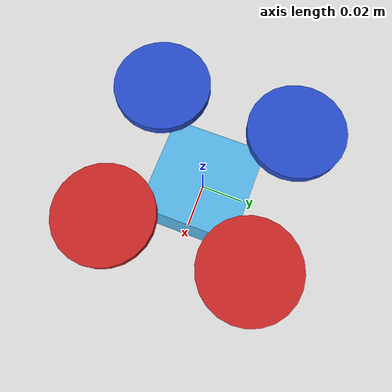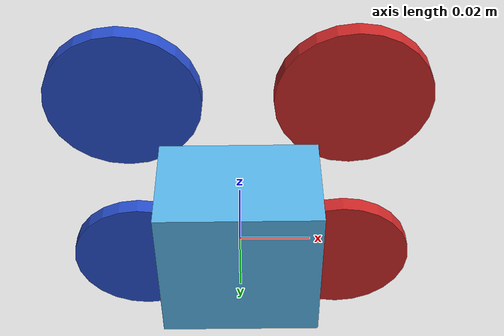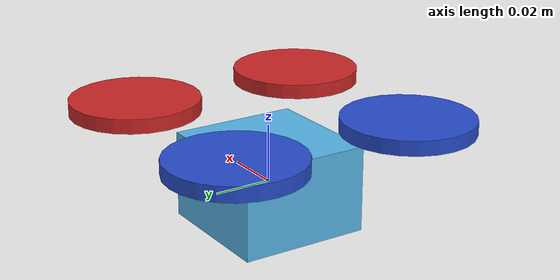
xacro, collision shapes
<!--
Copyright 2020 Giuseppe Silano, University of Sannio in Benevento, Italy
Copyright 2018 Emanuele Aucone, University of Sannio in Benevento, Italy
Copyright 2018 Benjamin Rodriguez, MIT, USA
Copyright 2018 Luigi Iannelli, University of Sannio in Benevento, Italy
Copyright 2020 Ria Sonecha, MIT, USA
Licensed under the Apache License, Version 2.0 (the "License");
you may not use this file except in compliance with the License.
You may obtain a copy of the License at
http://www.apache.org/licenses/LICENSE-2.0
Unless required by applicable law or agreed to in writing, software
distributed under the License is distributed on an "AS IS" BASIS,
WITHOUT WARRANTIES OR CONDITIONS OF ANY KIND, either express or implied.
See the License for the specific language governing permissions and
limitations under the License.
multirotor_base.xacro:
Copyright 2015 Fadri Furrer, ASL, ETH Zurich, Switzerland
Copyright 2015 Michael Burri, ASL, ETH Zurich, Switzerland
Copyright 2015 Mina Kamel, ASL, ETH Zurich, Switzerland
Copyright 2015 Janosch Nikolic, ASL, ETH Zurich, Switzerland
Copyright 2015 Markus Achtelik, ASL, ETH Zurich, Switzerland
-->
<?xml version="1.0"?>

<robot name="crazyflie2" xmlns:xacro="http://ros.org/wiki/xacro">
  <!-- Properties (Taken from Novel Dynamic Inversion Architecture Design for Quadrocopter Control by Jian Wang et al.) -->
  <xacro:property name="namespace" value="crazyflie2" />
  <xacro:property name="rotor_velocity_slowdown_sim" value="50" />
  <xacro:property name="use_mesh_file" value="true" />
  <xacro:property name="mesh_file" value="/home/kiko-hp-omen/RoboticPark/src/uned_crazyflie_ros_pkg/uned_crazyflie_config/model/test/crazyflie2.dae" />
  <xacro:property name="mass" value="0.025" /> <!-- [kg] -->
  <xacro:property name="body_width" value="0.045" />
  <xacro:property name="body_height" value="0.03" />
  <xacro:property name="mass_rotor" value="0.0005" /> <!-- [kg] -->
  <xacro:property name="arm_length" value="0.046" />
  <xacro:property name="rotor_offset_top" value="0.024" />
  <xacro:property name="radius_rotor" value="0.0225" />
  <xacro:property name="sin45" value="0.707106781186" />
  <xacro:property name="cos45" value="0.707106781186" />
  <!-- Forster's -->
  <xacro:property name="motor_constant" value="1.28192e-08" /> <!-- [kg m/s^2] -->
  <xacro:property name="moment_constant" value="5.964552e-03" />
  <xacro:property name="time_constant_up" value="0.0125" />
  <xacro:property name="time_constant_down" value="0.025" />
  <xacro:property name="max_rot_velocity" value="2618" /> <!-- [rad/s] -->
  <xacro:property name="rotor_drag_coefficient" value="8.06428e-05" />
  <xacro:property name="rolling_moment_coefficient" value="0.000001" />

  <!-- Property Blocks -->
  <xacro:property name="body_inertia">
    <inertia ixx="1.657171e-05" ixy="0.0" ixz="0.0" iyy="1.657171e-05" iyz="0.0" izz="2.9261652e-05" />
  </xacro:property>

  <!-- inertia of a single rotor, assuming it is a cuboid. Height=0.4mm, width=0.8mm -->
  <xacro:property name="rotor_inertia">
    <xacro:box_inertia x="${radius_rotor}" y="0.007" z="0.003" mass="${mass_rotor*rotor_velocity_slowdown_sim}" />
  </xacro:property>

  <!-- Included URDF Files -->
  <xacro:include filename="/home/kiko-hp-omen/RoboticPark/src/uned_crazyflie_ros_pkg/uned_crazyflie_config/model/test/multirotor_base.xacro" />

  <!-- Instantiate multirotor_base_macro once -->
  <xacro:multirotor_base_macro
    robot_namespace="${namespace}"
    mass="${mass}"
    body_width="${body_width}"
    body_height="${body_height}"
    use_mesh_file="${use_mesh_file}"
    mesh_file="${mesh_file}">
    <xacro:insert_block name="body_inertia" />
  </xacro:multirotor_base_macro>

  <!-- Instantiate rotors -->
  <xacro:vertical_rotor
    robot_namespace="${namespace}"
    suffix="front-right"
    direction="ccw"
    motor_constant="${motor_constant}"
    moment_constant="${moment_constant}"
    parent="${namespace}/base_link"
    mass_rotor="${mass_rotor}"
    radius_rotor="${radius_rotor}"
    time_constant_up="${time_constant_up}"
    time_constant_down="${time_constant_down}"
    max_rot_velocity="${max_rot_velocity}"
    motor_number="0"
    rotor_drag_coefficient="${rotor_drag_coefficient}"
    rolling_moment_coefficient="${rolling_moment_coefficient}"
    color="Red"
    use_own_mesh="false"
    mesh="">
    <origin xyz="${cos45*arm_length} -${sin45*arm_length} ${rotor_offset_top}" rpy="0 0 0" />
    <xacro:insert_block name="rotor_inertia" />
  </xacro:vertical_rotor>

  <xacro:vertical_rotor
    robot_namespace="${namespace}"
    suffix="back-right"
    direction="cw"
    motor_constant="${motor_constant}"
    moment_constant="${moment_constant}"
    parent="${namespace}/base_link"
    mass_rotor="${mass_rotor}"
    radius_rotor="${radius_rotor}"
    time_constant_up="${time_constant_up}"
    time_constant_down="${time_constant_down}"
    max_rot_velocity="${max_rot_velocity}"
    motor_number="1"
    rotor_drag_coefficient="${rotor_drag_coefficient}"
    rolling_moment_coefficient="${rolling_moment_coefficient}"
    color="Blue"
    use_own_mesh="false"
    mesh="">
    <origin xyz="-${cos45*arm_length} -${sin45*arm_length} ${rotor_offset_top}" rpy="0 0 0" />
    <xacro:insert_block name="rotor_inertia" />
  </xacro:vertical_rotor>

  <xacro:vertical_rotor
    robot_namespace="${namespace}"
    suffix="back-left"
    direction="ccw"
    motor_constant="${motor_constant}"
    moment_constant="${moment_constant}"
    parent="${namespace}/base_link"
    mass_rotor="${mass_rotor}"
    radius_rotor="${radius_rotor}"
    time_constant_up="${time_constant_up}"
    time_constant_down="${time_constant_down}"
    max_rot_velocity="${max_rot_velocity}"
    motor_number="2"
    rotor_drag_coefficient="${rotor_drag_coefficient}"
    rolling_moment_coefficient="${rolling_moment_coefficient}"
    color="Blue"
    use_own_mesh="false"
    mesh="">
    <origin xyz="-${cos45*arm_length} ${sin45*arm_length} ${rotor_offset_top}" rpy="0 0 0" />
    <xacro:insert_block name="rotor_inertia" />
  </xacro:vertical_rotor>

  <xacro:vertical_rotor
    robot_namespace="${namespace}"
    suffix="front-left"
    direction="cw"
    motor_constant="${motor_constant}"
    moment_constant="${moment_constant}"
    parent="${namespace}/base_link"
    mass_rotor="${mass_rotor}"
    radius_rotor="${radius_rotor}"
    time_constant_up="${time_constant_up}"
    time_constant_down="${time_constant_down}"
    max_rot_velocity="${max_rot_velocity}"
    motor_number="3"
    rotor_drag_coefficient="${rotor_drag_coefficient}"
    rolling_moment_coefficient="${rolling_moment_coefficient}"
    color="Red"
    use_own_mesh="false"
    mesh="">
    <origin xyz="${cos45*arm_length} ${sin45*arm_length} ${rotor_offset_top}" rpy="0 0 0" />
    <xacro:insert_block name="rotor_inertia" />
  </xacro:vertical_rotor>

</robot>

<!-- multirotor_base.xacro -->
<robot xmlns:xacro="http://ros.org/wiki/xacro">
  <!-- Macro for the inertia of a box -->
  <xacro:macro name="box_inertia" params="x y z mass">
    <inertia ixx="${0.0833333 * mass * (y*y + z*z)}" ixy="0.0" ixz="0.0"
      iyy="${0.0833333 * mass * (x*x + z*z)}" iyz="0.0"
      izz="${0.0833333 * mass * (x*x + y*y)}" />
  </xacro:macro>

  <!-- Macro for the inertial properties of a box -->
  <xacro:macro name="box_inertial" params="x y z mass *origin">
    <inertial>
      <mass value="${mass}" />
      <xacro:insert_block name="origin" />
      <xacro:box_inertia x="${x}" y="${y}" z="${z}" mass="${mass}" />
    </inertial>
  </xacro:macro>

  <!-- Main multirotor link -->
  <xacro:macro name="multirotor_base_macro"
    params="robot_namespace mass body_width body_height use_mesh_file mesh_file *inertia">
    <link name="${robot_namespace}/base_link"></link>

    <joint name="${robot_namespace}/base_joint" type="fixed">
      <origin xyz="0 0 0" rpy="0 0 0" />
      <parent link="${robot_namespace}/base_link" />
      <child link="${robot_namespace}/base_link_inertia" />
    </joint>

    <link name="${robot_namespace}/base_link_inertia">
      <inertial>
        <mass value="${mass}" />  <!-- [kg] -->
        <origin xyz="0 0 0" />
        <xacro:insert_block name="inertia" />
      </inertial>

      <visual>
        <origin xyz="0 0 0" rpy="0 0 0" />
        <geometry>
          <xacro:if value="${use_mesh_file}">
            <mesh filename="${mesh_file}" scale="1 1 1" />
          </xacro:if>
          <xacro:unless value="${use_mesh_file}">
            <box size="${body_width} ${body_width} ${body_height}"/>
          </xacro:unless>
        </geometry>
      </visual>

      <collision>
        <origin xyz="0 0 0" rpy="0 0 0" />
        <geometry>
          <box size="${body_width} ${body_width} ${body_height}" />
        </geometry>
      </collision>
    </link>

    <!-- attach multirotor_base_plugin to the base_link -->
    <gazebo>
      <plugin filename="librotors_gazebo_multirotor_base_plugin.so" name="multirotor_base_plugin">
        <robotNamespace>${robot_namespace}</robotNamespace>
        <linkName>${robot_namespace}/base_link</linkName>
        <rotorVelocitySlowdownSim>${rotor_velocity_slowdown_sim}</rotorVelocitySlowdownSim>
      </plugin>
    </gazebo>
  </xacro:macro>

  <!-- Rotor joint and link -->
  <xacro:macro name="vertical_rotor"
    params="robot_namespace suffix direction motor_constant moment_constant parent mass_rotor radius_rotor time_constant_up time_constant_down max_rot_velocity motor_number rotor_drag_coefficient rolling_moment_coefficient color use_own_mesh mesh *origin *inertia">
    <joint name="${robot_namespace}/rotor_${motor_number}_joint" type="continuous">
      <xacro:insert_block name="origin" />
      <axis xyz="0 0 1" />
      <!-- TODO(ff): not currently set because it's not yet supported -->
      <parent link="${parent}" />
      <child link="${robot_namespace}/rotor_${motor_number}" />
    </joint>
    <link name="${robot_namespace}/rotor_${motor_number}">
      <inertial>
        <mass value="${mass_rotor}" /> <!-- [kg] -->
        <xacro:insert_block name="inertia" />
      </inertial>
      <visual>
        <geometry>

          <xacro:if value="${use_own_mesh}">
            <mesh filename="${mesh}"
              scale="1 1 1" />
          </xacro:if>
          <xacro:unless value="${use_own_mesh}">
            <mesh filename="package://rotors_description/meshes/propeller_${direction}.dae"
              scale="${radius_rotor} ${radius_rotor} ${radius_rotor}" /> <!-- The propeller meshes have a radius of 1m -->
          </xacro:unless>
        </geometry>
      </visual>
      <collision>
        <geometry>
          <cylinder length="0.005" radius="${radius_rotor}" />
        </geometry>
      </collision>
    </link>
    <gazebo>
      <plugin name="${robot_namespace}_${suffix}_motor_model" filename="librotors_gazebo_motor_model.so">
        <robotNamespace>${robot_namespace}</robotNamespace>
        <jointName>${robot_namespace}/rotor_${motor_number}_joint</jointName>
        <linkName>${robot_namespace}/rotor_${motor_number}</linkName>
        <turningDirection>${direction}</turningDirection>
        <timeConstantUp>${time_constant_up}</timeConstantUp>
        <timeConstantDown>${time_constant_down}</timeConstantDown>
        <maxRotVelocity>${max_rot_velocity}</maxRotVelocity>
        <motorConstant>${motor_constant}</motorConstant>
        <momentConstant>${moment_constant}</momentConstant>
        <commandSubTopic>gazebo/command/motor_speed</commandSubTopic>
        <motorNumber>${motor_number}</motorNumber>
        <rotorDragCoefficient>${rotor_drag_coefficient}</rotorDragCoefficient>
        <rollingMomentCoefficient>${rolling_moment_coefficient}</rollingMomentCoefficient>
        <motorSpeedPubTopic>motor_speed/m${motor_number}</motorSpeedPubTopic>
        <rotorVelocitySlowdownSim>${rotor_velocity_slowdown_sim}</rotorVelocitySlowdownSim>
      </plugin>
    </gazebo>
    <gazebo reference="${robot_namespace}/rotor_${motor_number}">
      <material>Gazebo/${color}</material>
    </gazebo>
  </xacro:macro>
</robot>
